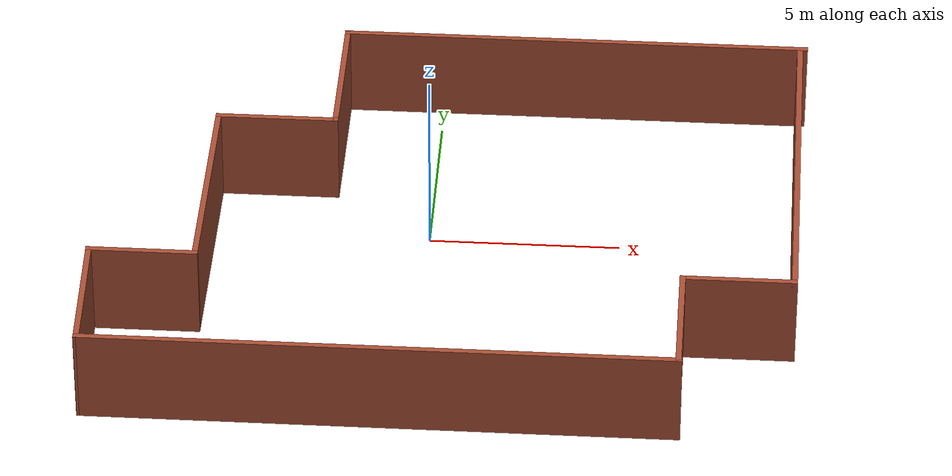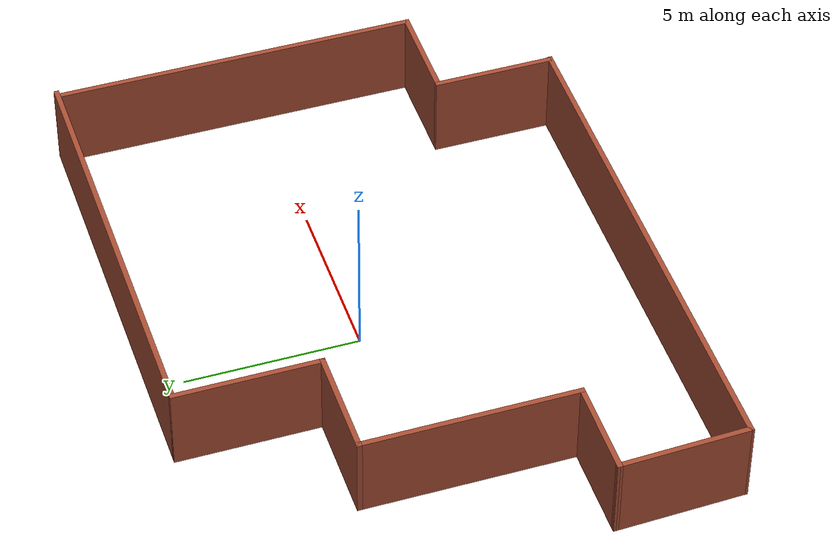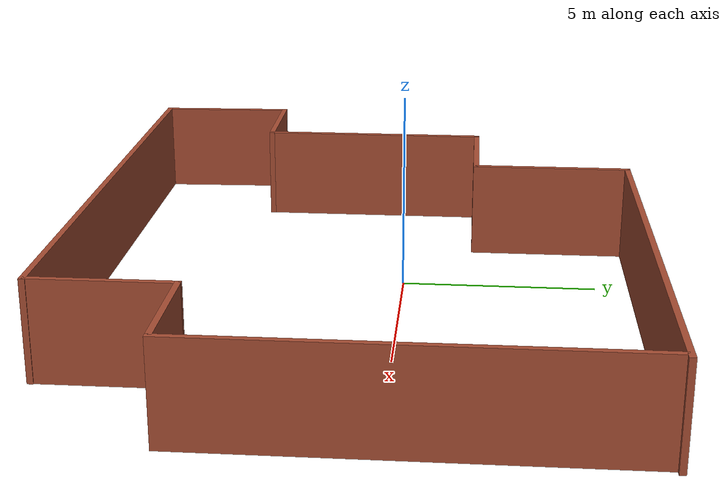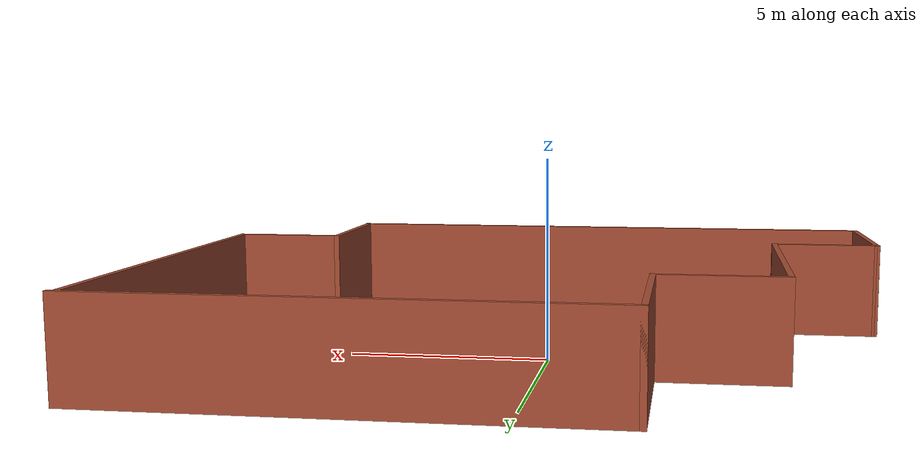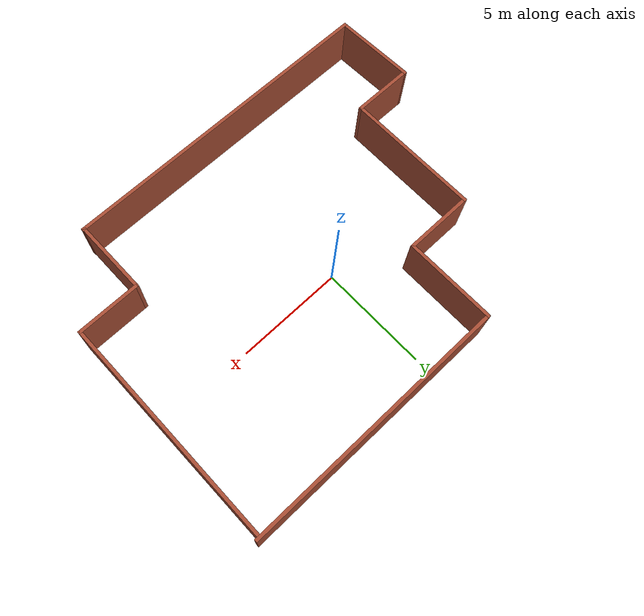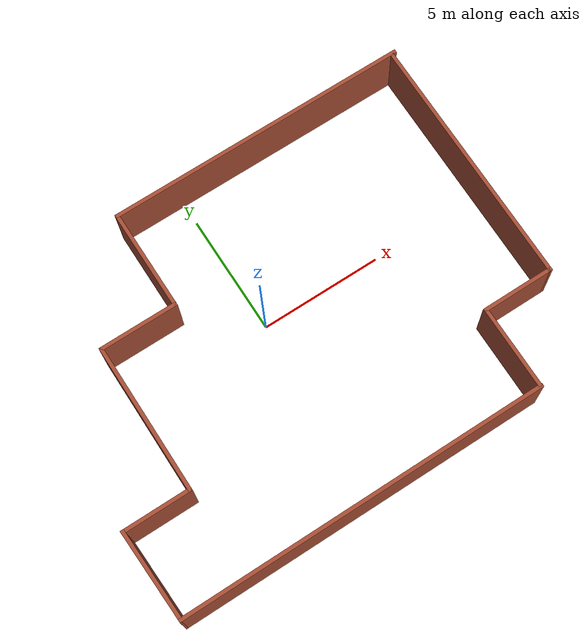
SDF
<?xml version='1.0'?>
<sdf version='1.6'>
  <model name='House'>
    <pose frame=''>0.62961 -0.981642 0 0 -0 0</pose>
    <link name='Wall_30'>
      <collision name='Wall_30_Collision'>
        <geometry>
          <box>
            <size>3.25 0.15 2.5</size>
          </box>
        </geometry>
        <pose frame=''>0 0 1.25 0 -0 0</pose>
      </collision>
      <visual name='Wall_30_Visual'>
        <pose frame=''>0 0 1.25 0 -0 0</pose>
        <geometry>
          <box>
            <size>3.25 0.15 2.5</size>
          </box>
        </geometry>
        <material>
          <script>
            <uri>file://media/materials/scripts/gazebo.material</uri>
            <name>Gazebo/Bricks</name>
          </script>
          <ambient>1 1 1 1</ambient>
        </material>
        <meta>
          <layer>0</layer>
        </meta>
      </visual>
      <pose frame=''>-4.80961 2.83164 0 0 -0 3.14159</pose>
    </link>
    <link name='Wall_31'>
      <collision name='Wall_31_Collision'>
        <geometry>
          <box>
            <size>6.25 0.15 2.5</size>
          </box>
        </geometry>
        <pose frame=''>0 0 1.25 0 -0 0</pose>
      </collision>
      <visual name='Wall_31_Visual'>
        <pose frame=''>0 0 1.25 0 -0 0</pose>
        <geometry>
          <box>
            <size>6.25 0.15 2.5</size>
          </box>
        </geometry>
        <material>
          <script>
            <uri>file://media/materials/scripts/gazebo.material</uri>
            <name>Gazebo/Bricks</name>
          </script>
          <ambient>1 1 1 1</ambient>
        </material>
        <meta>
          <layer>0</layer>
        </meta>
      </visual>
      <pose frame=''>-6.35961 -0.218358 0 0 -0 -1.5708</pose>
    </link>
    <link name='Wall_36'>
      <collision name='Wall_36_Collision'>
        <geometry>
          <box>
            <size>2.87833 0.15 2.5</size>
          </box>
        </geometry>
        <pose frame=''>0 0 1.25 0 -0 0</pose>
      </collision>
      <visual name='Wall_36_Visual'>
        <pose frame=''>0 0 1.25 0 -0 0</pose>
        <geometry>
          <box>
            <size>2.87833 0.15 2.5</size>
          </box>
        </geometry>
        <material>
          <script>
            <uri>file://media/materials/scripts/gazebo.material</uri>
            <name>Gazebo/Bricks</name>
          </script>
          <ambient>1 1 1 1</ambient>
        </material>
        <meta>
          <layer>0</layer>
        </meta>
      </visual>
      <pose frame=''>-7.72377 -3.26836 0 0 -0 3.14159</pose>
    </link>
    <link name='Wall_40'>
      <collision name='Wall_40_Collision'>
        <geometry>
          <box>
            <size>3.81286 0.15 2.5</size>
          </box>
        </geometry>
        <pose frame=''>0 0 1.25 0 -0 0</pose>
      </collision>
      <visual name='Wall_40_Visual'>
        <pose frame=''>0 0 1.25 0 -0 0</pose>
        <geometry>
          <box>
            <size>3.81286 0.15 2.5</size>
          </box>
        </geometry>
        <material>
          <script>
            <uri>file://media/materials/scripts/gazebo.material</uri>
            <name>Gazebo/Bricks</name>
          </script>
          <ambient>1 1 1 1</ambient>
        </material>
        <meta>
          <layer>0</layer>
        </meta>
      </visual>
      <pose frame=''>-9.02711 -5.09877 0 0 -0 -1.53757</pose>
    </link>
    <link name='Wall_55'>
      <collision name='Wall_55_Collision'>
        <geometry>
          <box>
            <size>3.5 0.15 2.5</size>
          </box>
        </geometry>
        <pose frame=''>0 0 1.25 0 -0 0</pose>
      </collision>
      <visual name='Wall_55_Visual'>
        <pose frame=''>0 0 1.25 0 -0 0</pose>
        <geometry>
          <box>
            <size>3.5 0.15 2.5</size>
          </box>
        </geometry>
        <material>
          <script>
            <uri>file://media/materials/scripts/gazebo.material</uri>
            <name>Gazebo/Bricks</name>
          </script>
          <ambient>1 1 1 1</ambient>
        </material>
        <meta>
          <layer>0</layer>
        </meta>
      </visual>
      <pose frame=''>6.11206 -5.19336 0 0 -0 1.5708</pose>
    </link>
    <link name='Wall_56'>
      <collision name='Wall_56_Collision'>
        <geometry>
          <box>
            <size>3 0.15 2.5</size>
          </box>
        </geometry>
        <pose frame=''>0 0 1.25 0 -0 0</pose>
      </collision>
      <visual name='Wall_56_Visual'>
        <pose frame=''>0 0 1.25 0 -0 0</pose>
        <geometry>
          <box>
            <size>3 0.15 2.5</size>
          </box>
        </geometry>
        <material>
          <script>
            <uri>file://media/materials/scripts/gazebo.material</uri>
            <name>Gazebo/Bricks</name>
          </script>
          <ambient>1 1 1 1</ambient>
        </material>
        <meta>
          <layer>0</layer>
        </meta>
      </visual>
      <pose frame=''>7.53706 -3.51836 0 0 -0 0</pose>
    </link>
    <link name='Wall_58'>
      <collision name='Wall_58_Collision'>
        <geometry>
          <box>
            <size>4.25 0.15 2.5</size>
          </box>
        </geometry>
        <pose frame=''>0 0 1.25 0 -0 0</pose>
      </collision>
      <visual name='Wall_58_Visual'>
        <pose frame=''>0 0 1.25 0 -0 0</pose>
        <geometry>
          <box>
            <size>4.25 0.15 2.5</size>
          </box>
        </geometry>
        <material>
          <script>
            <uri>file://media/materials/scripts/gazebo.material</uri>
            <name>Gazebo/Bricks</name>
          </script>
          <ambient>1 1 1 1</ambient>
        </material>
        <meta>
          <layer>0</layer>
        </meta>
      </visual>
      <pose frame=''>-3.25961 4.88164 0 0 -0 1.5708</pose>
    </link>
    <link name='Wall_67'>
      <collision name='Wall_67_Collision'>
        <geometry>
          <box>
            <size>12.5 0.15 2.5</size>
          </box>
        </geometry>
        <pose frame=''>0 0 1.25 0 -0 0</pose>
      </collision>
      <visual name='Wall_67_Visual'>
        <pose frame=''>0 0 1.25 0 -0 0</pose>
        <geometry>
          <box>
            <size>12.5 0.15 2.5</size>
          </box>
        </geometry>
        <material>
          <script>
            <uri>file://media/materials/scripts/gazebo.material</uri>
            <name>Gazebo/Bricks</name>
          </script>
          <ambient>1 1 1 1</ambient>
        </material>
        <meta>
          <layer>0</layer>
        </meta>
      </visual>
      <pose frame=''>2.91539 6.93164 0 0 -0 0</pose>
    </link>
    <link name='Wall_70'>
      <collision name='Wall_70_Collision'>
        <geometry>
          <box>
            <size>10.5 0.15 2.5</size>
          </box>
        </geometry>
        <pose frame=''>0 0 1.25 0 -0 0</pose>
      </collision>
      <visual name='Wall_70_Visual'>
        <pose frame=''>0 0 1.25 0 -0 0</pose>
        <geometry>
          <box>
            <size>10.5 0.15 2.5</size>
          </box>
        </geometry>
        <material>
          <script>
            <uri>file://media/materials/scripts/gazebo.material</uri>
            <name>Gazebo/Bricks</name>
          </script>
          <ambient>1 1 1 1</ambient>
        </material>
        <meta>
          <layer>0</layer>
        </meta>
      </visual>
      <pose frame=''>8.96206 1.65664 0 0 -0 1.5708</pose>
    </link>
    <link name='Wall_72'>
      <collision name='Wall_72_Collision'>
        <geometry>
          <box>
            <size>15.25 0.15 2.5</size>
          </box>
        </geometry>
        <pose frame=''>0 0 1.25 0 -0 0</pose>
      </collision>
      <visual name='Wall_72_Visual'>
        <pose frame=''>0 0 1.25 0 -0 0</pose>
        <geometry>
          <box>
            <size>15.25 0.15 2.5</size>
          </box>
        </geometry>
        <material>
          <script>
            <uri>file://media/materials/scripts/gazebo.material</uri>
            <name>Gazebo/Bricks</name>
          </script>
          <ambient>1 1 1 1</ambient>
        </material>
        <meta>
          <layer>0</layer>
        </meta>
      </visual>
      <pose frame=''>-1.41627 -6.92919 0 0 -0 0</pose>
    </link>
    <static>1</static>
  </model>
</sdf>
